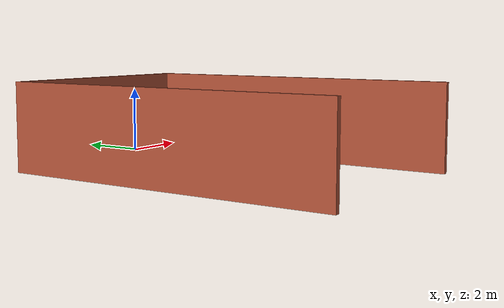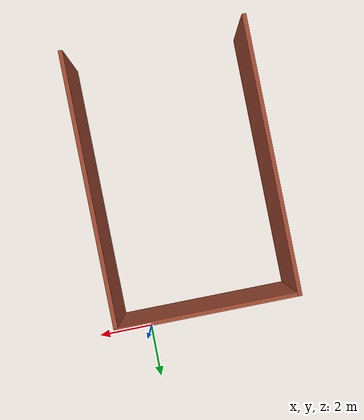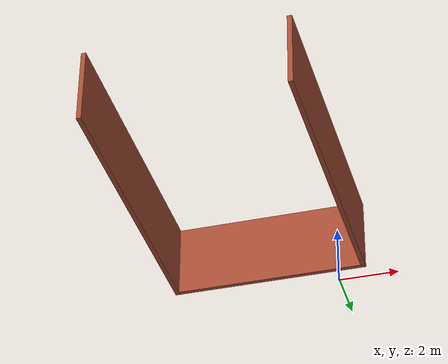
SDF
<?xml version='1.0'?>
<sdf version='1.6'>
  <model name='gazebo_course_1_easy'>
    <pose frame=''>-2.235 -5.41 0 0 -0 0</pose>
    <link name='Wall_0'>
      <collision name='Wall_0_Collision'>
        <geometry>
          <box>
            <size>9.75 0.15 2.5</size>
          </box>
        </geometry>
        <pose frame=''>0 0 1.25 0 -0 0</pose>
      </collision>
      <visual name='Wall_0_Visual'>
        <pose frame=''>0 0 1.25 0 -0 0</pose>
        <geometry>
          <box>
            <size>9.75 0.15 2.5</size>
          </box>
        </geometry>
        <material>
          <script>
            <uri>file://media/materials/scripts/gazebo.material</uri>
            <name>Gazebo/Bricks</name>
          </script>
          <ambient>1 1 1 1</ambient>
        </material>
        <meta>
          <layer>0</layer>
        </meta>
      </visual>
      <pose frame=''>-3.175 -0 0 0 -0 1.5708</pose>
    </link>
    <link name='Wall_1'>
      <collision name='Wall_1_Collision'>
        <geometry>
          <box>
            <size>6.5 0.15 2.5</size>
          </box>
        </geometry>
        <pose frame=''>0 0 1.25 0 -0 0</pose>
      </collision>
      <visual name='Wall_1_Visual'>
        <pose frame=''>0 0 1.25 0 -0 0</pose>
        <geometry>
          <box>
            <size>6.5 0.15 2.5</size>
          </box>
        </geometry>
        <material>
          <script>
            <uri>file://media/materials/scripts/gazebo.material</uri>
            <name>Gazebo/Bricks</name>
          </script>
          <ambient>1 1 1 1</ambient>
        </material>
        <meta>
          <layer>0</layer>
        </meta>
      </visual>
      <pose frame=''>0 4.8 0 0 -0 0</pose>
    </link>
    <link name='Wall_2'>
      <collision name='Wall_2_Collision'>
        <geometry>
          <box>
            <size>9.75 0.15 2.5</size>
          </box>
        </geometry>
        <pose frame=''>0 0 1.25 0 -0 0</pose>
      </collision>
      <visual name='Wall_2_Visual'>
        <pose frame=''>0 0 1.25 0 -0 0</pose>
        <geometry>
          <box>
            <size>9.75 0.15 2.5</size>
          </box>
        </geometry>
        <material>
          <script>
            <uri>file://media/materials/scripts/gazebo.material</uri>
            <name>Gazebo/Bricks</name>
          </script>
          <ambient>1 1 1 1</ambient>
        </material>
        <meta>
          <layer>0</layer>
        </meta>
      </visual>
      <pose frame=''>3.175 -0 0 0 -0 -1.5708</pose>
    </link>
    <static>1</static>
  </model>
</sdf>
